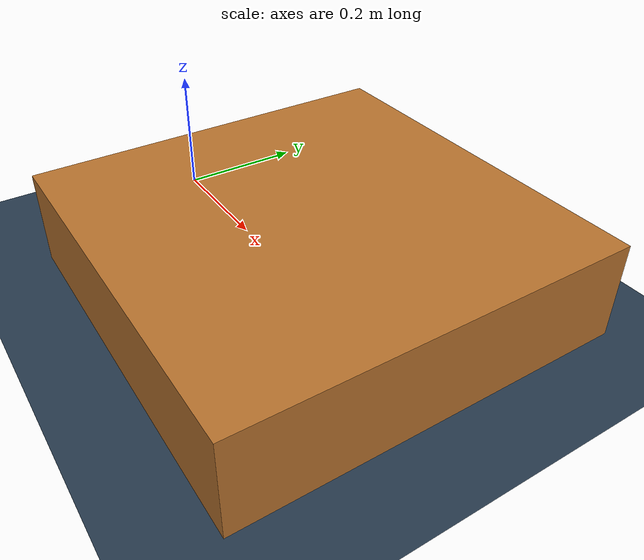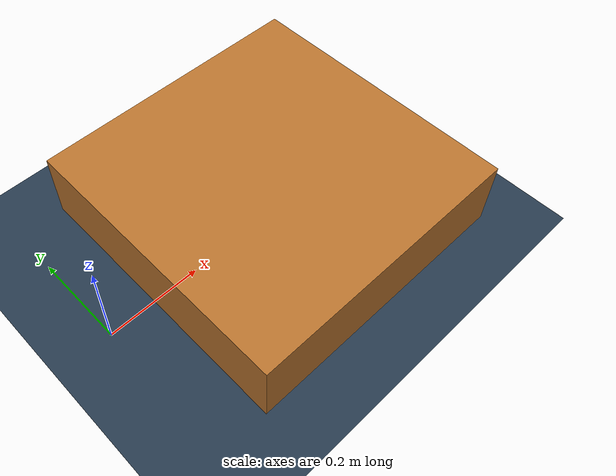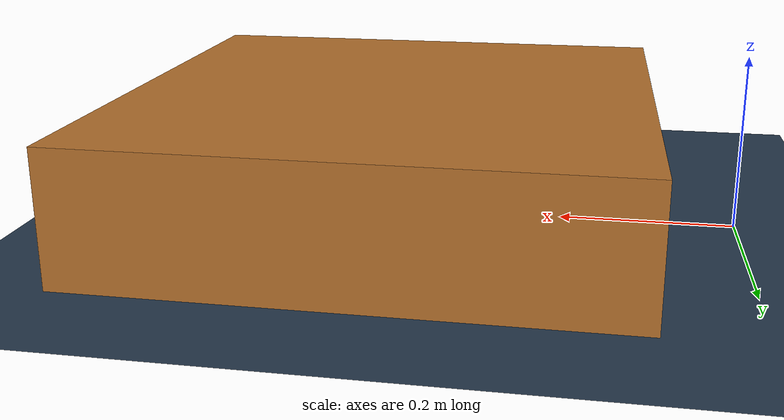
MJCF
<mujoco model="Flats">
    <asset>
        <texture type="skybox" builtin="gradient" rgb1="0.3 0.5 0.7" rgb2="0 0 0" width="512" height="512"/>
        <texture name="texplane" type="2d" builtin="checker" rgb1=".2 .3 .4" rgb2=".1 0.15 0.2" width="512" height="512" mark="cross" markrgb=".8 .8 .8"/>
        <material name="matplane" reflectance="0.3" texture="texplane" texrepeat="1 1" texuniform="true"/>
    </asset>

    <worldbody>
        <geom name="ground_2" type="plane" size="0 0 1" pos="0 0 0" quat="1 0 0 0" material="matplane" />

        <geom name="front_landing_box" type="box" size="0.3 0.3 0.075"
              pos="0.4 0 0.075" rgba="0.72 0.45 0.18 1" />

        <light directional="true" diffuse=".4 .4 .4" specular="0.1 0.1 0.1" pos="0 0 5.0" dir="0 0 -1" castshadow="false"/>
        <light directional="true" diffuse=".6 .6 .6" specular="0.2 0.2 0.2" pos="0 0 4" dir="0 0 -1"/>
    </worldbody>
</mujoco>
